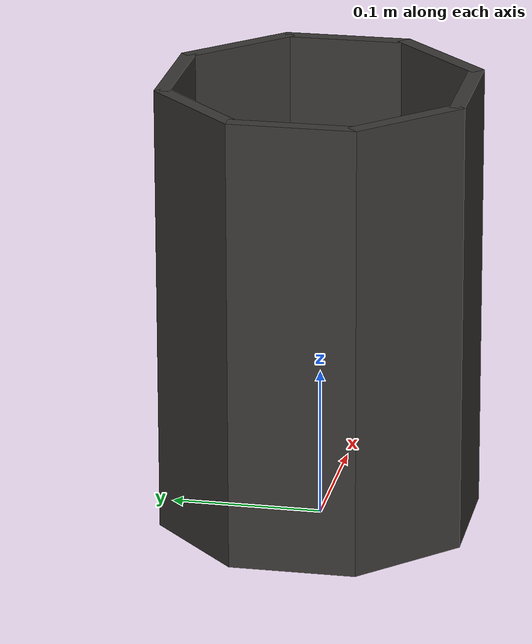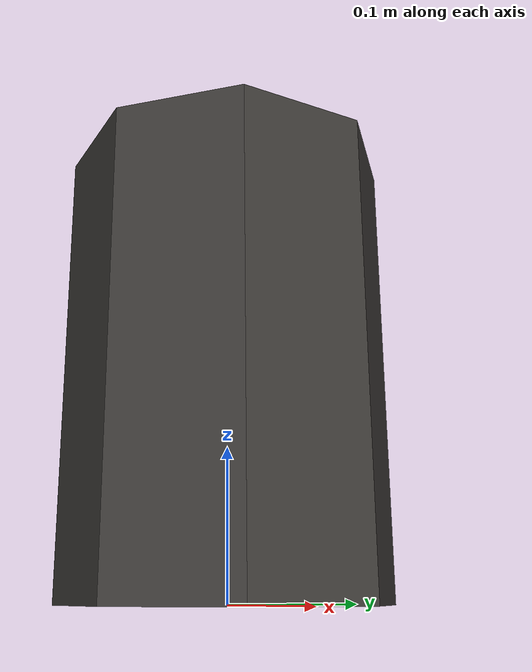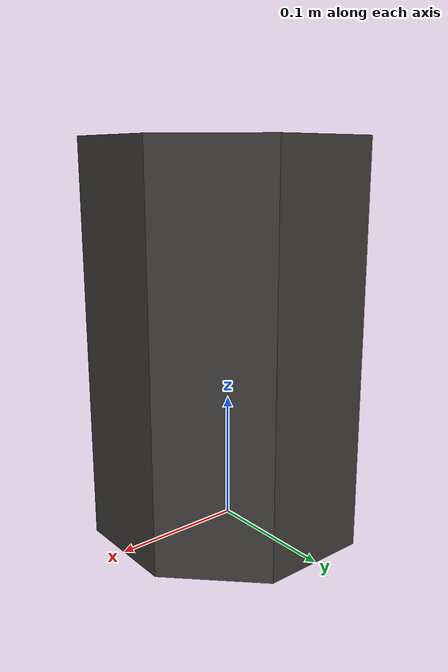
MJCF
<?xml version="1.0" encoding="utf-8"?>
<!-- from https://github.com/vikashplus/mj_envs/tree/master/mj_envs/hand_manipulation_suite/assets -->
<!-- Information about door can be found in this paper: https://arxiv.org/pdf/1709.10087.pdf -->

<mujoco model="microwave">
  <asset>
    <texture file="../textures/light-wood.png" type="cube" name="light-wood" />
    <texture file="../textures/steel-brushed.png" type="cube" name="steel" />
    <material name="MatSteel" texture="steel" specular="1" shininess="0.3" rgba="0.3 0.3 0.3 1" />
    <material name="MatLightWood" texture="light-wood" texrepeat="3 3" specular="0.4" shininess="0.1" />
  </asset>

  <worldbody>
    <body>
      <body name="object">
        <inertial pos="0 0 0" mass="0.1" diaginertia="0.00052 0.00052 0.001"/>
        <site name="origin" pos="0 0 0" rgba="0 0 0 0" size="0.005"/>

        <geom name="geom_bottom_visual"
          pos="0 0 0.005"
          size="0.1 0.005" type="cylinder"
          group="1" contype="0" conaffinity="0"
	  material="MatSteel"
          />

        <geom name="geom_bottom"
          pos="0 0 0.005"
          size="0.1 0.1 0.005" type="box"
	  group="0"
	  friction="1 1 1"
	  rgba="0 0 0 0"
	  />

        <geom name="geom_wall1_visual"
          pos="0.095 0 0.15"
          size="0.005 0.0414214 0.15" type="box"
          group="1" contype="0" conaffinity="0"
          material="MatSteel"
          />
        <geom name="geom_wall2_visual"
          pos="-0.095 0 0.15"
          size="0.005 0.0414214 0.15" type="box"
          group="1" contype="0" conaffinity="0"
          material="MatSteel"
          />
        <geom name="geom_wall3_visual"
          pos="0 0.095 0.15" quat="0.707107 0 0 0.707107"
          size="0.005 0.0414214 0.15" type="box"
          group="1" contype="0" conaffinity="0"
          material="MatSteel"
          />
        <geom name="geom_wall4_visual"
          pos="0 -0.095 0.15" quat="0.707107 0 0 0.707107"
          size="0.005 0.0414214 0.15" type="box"
          group="1" contype="0" conaffinity="0"
          material="MatSteel"
          />
        <geom name="geom_wall5_visual"
          pos="0.0671751 0.0671751 0.15" quat="0.923880 0 0 0.382683"
          size="0.005 0.0414214 0.15" type="box"
          group="1" contype="0" conaffinity="0"
          material="MatSteel"
          />
        <geom name="geom_wall6_visual"
          pos="-0.0671751 -0.0671751 0.15" quat="0.923880 0 0 0.382683"
          size="0.005 0.0414214 0.15" type="box"
          group="1" contype="0" conaffinity="0"
          material="MatSteel"
          />
        <geom name="geom_wall7_visual"
          pos="-0.0671751 0.0671751 0.15" quat="0.382683 0 0 0.923880"
          size="0.005 0.0414214 0.15" type="box"
          group="1" contype="0" conaffinity="0"
          material="MatSteel"
          />
        <geom name="geom_wall8_visual"
          pos=" 0.0671751 -0.0671751 0.15" quat="0.382683 0 0 0.923880"
          size="0.005 0.0414214 0.15" type="box"
          group="1" contype="0" conaffinity="0"
          material="MatSteel"
          />

        <geom name="geom_wall1"
          pos="0.095 0 0.155"
          size="0.005 0.0414214 0.145" type="box"
          group="0"
          rgba="0 0 0 0"
          />
        <geom name="geom_wall2"
          pos="-0.095 0 0.155"
          size="0.005 0.0414214 0.145" type="box"
          group="0"
          rgba="0 0 0 0"
          />
        <geom name="geom_wall3"
          pos="0 0.095 0.155" quat="0.707107 0 0 0.707107"
          size="0.005 0.0414214 0.145" type="box"
          group="0"
          rgba="0 0 0 0"
          />
        <geom name="geom_wall4"
          pos="0 -0.095 0.155" quat="0.707107 0 0 0.707107"
          size="0.005 0.0414214 0.145" type="box"
          group="0"
          rgba="0 0 0 0"
          />
        <geom name="geom_wall5"
          pos="0.0671751 0.0671751 0.155" quat="0.923880 0 0 0.382683"
          size="0.005 0.0414214 0.145" type="box"
          group="0"
          rgba="0 0 0 0"
          />
        <geom name="geom_wall6"
          pos="-0.0671751 -0.0671751 0.155" quat="0.923880 0 0 0.382683"
          size="0.005 0.0414214 0.145" type="box"
          group="0"
          rgba="0 0 0 0"
          />
        <geom name="geom_wall7"
          pos="-0.0671751 0.0671751 0.155" quat="0.382683 0 0 0.923880"
          size="0.005 0.0414214 0.145" type="box"
          group="0"
          rgba="0 0 0 0"
          />
        <geom name="geom_wall8"
          pos=" 0.0671751 -0.0671751 0.155" quat="0.382683 0 0 0.923880"
          size="0.005 0.0414214 0.145" type="box"
          group="0"
          rgba="0 0 0 0"
          />

      </body>
      <body name="socket_point" pos="0.0 0.0 0.7"/>
      <body name="releasing_point" pos="0.0 0.0 0.7"/>

      <site name="bottom_site" pos="0 0 -0.0207" rgba="0 0 0 0" size="0.005"/>
      <site name="top_site" pos="0 0 0.007" rgba="0 0 0 0" size="0.005"/>
      <site name="horizontal_radius_site" pos="0 0 0" rgba="0 0 0 0" size="0.003"/>
    </body>

  </worldbody>
</mujoco>
